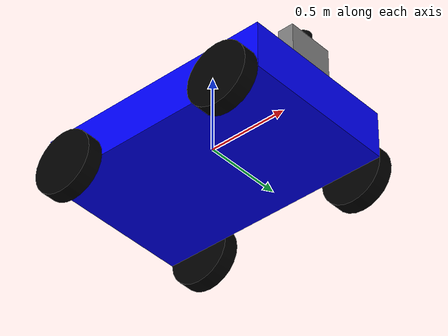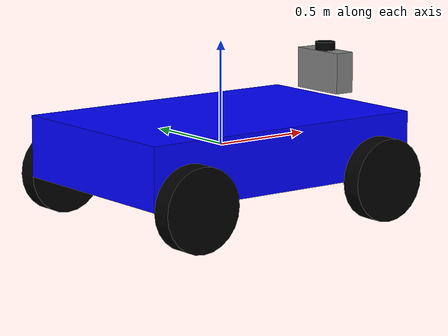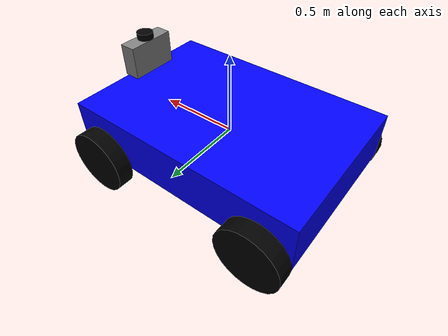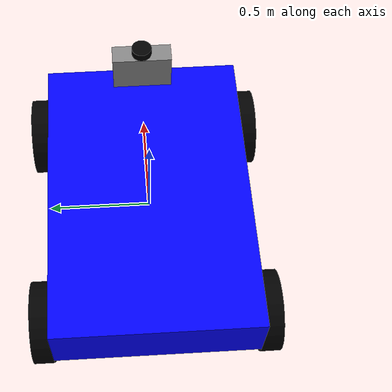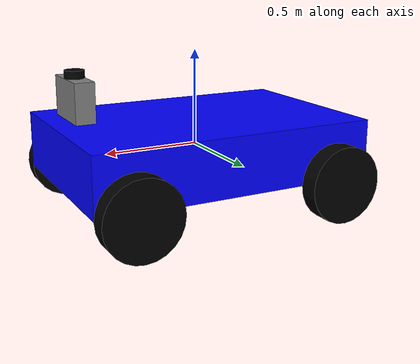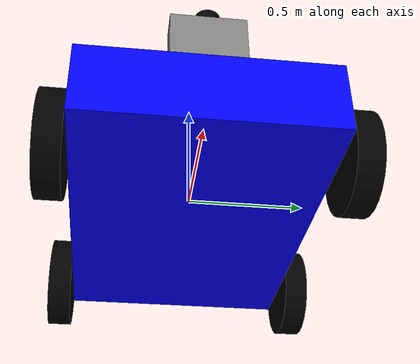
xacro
<?xml version="1.0"?>
<robot xmlns:xacro="http://www.ros.org/wiki/xacro" name="my_robot">

    <xacro:include filename="ros2_control.xacro" />
    <xacro:include filename="lidar.xacro" />

    <!-- BASE LINK (free floating) -->
    <link name="base_link"></link>

    <!-- BODY LINK (chassis) -->
    <joint name="base_to_body" type="fixed">
        <parent link="base_link"/>
        <child link="body_link"/>
        <origin xyz="0 0 0" rpy="0 0 0"/>
    </joint>

    <!-- BASE_FOOTPRINT LINK -->

    <joint name="base_footprint_joint" type="fixed">
        <parent link="base_link"/>
        <child link="base_footprint"/>
        <origin xyz="0 0 0" rpy="0 0 0"/>
    </joint>

    <link name="base_footprint">
    </link>

    <link name="body_link">
    <visual>
        <origin xyz="0.0 0.0 0.0" rpy="0.0 0.0 0.0"/>
        <geometry>
            <box size="1.5 1 0.3"/>
        </geometry>
        <material name="blue">
            <color rgba="0 0 1 1"/>
        </material>
    </visual>
    <collision>
        <origin xyz="0.0 0.0 0.0" rpy="0.0 0.0 0.0"/>
        <geometry>
            <box size="1.5 1 0.3"/>
        </geometry>
    </collision>
    <inertial>
        <origin xyz="0 0 0" rpy="0 0 0"/>
        <mass value="10.0"/>
        <inertia ixx="0.916" ixy="0.0" ixz="0.0" iyy="1.979" iyz="0.0" izz="2.708"/>
    </inertial>
    </link>

    <gazebo reference="body_link">
        <material>Gazebo/Blue</material>
    </gazebo>

    <link name="left_front_wheel_link">
    <visual>
        <origin xyz="0.0 0.0 0.0" rpy="1.57 0.0 0.0"/>
        <geometry>
            <cylinder radius="0.2" length="0.1"/>
        </geometry>
        <material name="black">
            <color rgba="0 0 0 1"/>
        </material>
    </visual>
    <collision>
        <origin xyz="0.0 0.0 0.0" rpy="1.57 0.0 0.0"/>
        <geometry>
            <cylinder radius="0.2" length="0.1"/>
        </geometry>
        <surface>
            <friction>
                <ode>
                    <mu>1.0</mu>
                    <mu2>1.0</mu2>
                </ode>
            </friction>
        </surface>
    </collision>
    <inertial>
        <origin xyz="0 0 0" rpy="0 0 0"/>
        <mass value="0.5"/>
        <inertia ixx="0.00625" ixy="0.0" ixz="0.0" iyy="0.00625" iyz="0.0" izz="0.01"/>
    </inertial>
    </link>

    <gazebo reference="left_front_wheel_link">
        <material>Gazebo/Black</material>
        <mu1>1.0</mu1>
        <mu2>1.0</mu2>
    </gazebo>

    <joint name="body_to_left_front_wheel" type="continuous">
        <parent link="body_link"/>
        <child link="left_front_wheel_link"/>
        <origin xyz="0.55 -0.55 -0.15" rpy="0.0 0.0 0.0"/>
        <axis xyz="0 1 0"/>
    </joint>

    <link name="left_back_wheel_link">
    <visual>
        <origin xyz="0.0 0.0 0.0" rpy="1.57 0.0 0.0"/>
        <geometry>
            <cylinder radius="0.2" length="0.1"/>
        </geometry>
        <material name="black">
            <color rgba="0 0 0 1"/>
        </material>
    </visual>
    <collision>
        <origin xyz="0.0 0.0 0.0" rpy="1.57 0.0 0.0"/>
        <geometry>
            <cylinder radius="0.2" length="0.1"/>
        </geometry>
        <surface>
            <friction>
                <ode>
                    <mu>1.0</mu>
                    <mu2>1.0</mu2>
                </ode>
            </friction>
        </surface>
    </collision>
    <inertial>
        <origin xyz="0 0 0" rpy="0 0 0"/>
        <mass value="0.5"/>
        <inertia ixx="0.00625" ixy="0.0" ixz="0.0" iyy="0.00625" iyz="0.0" izz="0.01"/>
    </inertial>
    </link>

    <gazebo reference="left_back_wheel_link">
        <material>Gazebo/Black</material>
        <mu1>1.0</mu1>
        <mu2>1.0</mu2>
    </gazebo>

    <joint name="body_to_left_back_wheel" type="continuous">
        <parent link="body_link"/>
        <child link="left_back_wheel_link"/>
        <origin xyz="-0.55 -0.55 -0.15" rpy="0.0 0.0 0.0"/>
        <axis xyz="0 1 0"/>
    </joint>

    <link name="right_front_wheel_link">
    <visual>
        <origin xyz="0.0 0.0 0.0" rpy="1.57 0.0 0.0"/>
        <geometry>
            <cylinder radius="0.2" length="0.1"/>
        </geometry>
        <material name="black">
            <color rgba="0 0 0 1"/>
        </material>
    </visual>
    <collision>
        <origin xyz="0.0 0.0 0.0" rpy="1.57 0.0 0.0"/>
        <geometry>
            <cylinder radius="0.2" length="0.1"/>
        </geometry>
        <surface>
            <friction>
                <ode>
                    <mu>1.0</mu>
                    <mu2>1.0</mu2>
                </ode>
            </friction>
        </surface>
    </collision>
    <inertial>
        <origin xyz="0 0 0" rpy="0 0 0"/>
        <mass value="0.5"/>
        <inertia ixx="0.00625" ixy="0.0" ixz="0.0" iyy="0.00625" iyz="0.0" izz="0.01"/>
    </inertial>
    </link>

    <gazebo reference="right_front_wheel_link">
        <material>Gazebo/Black</material>
        <mu1>1.0</mu1>
        <mu2>1.0</mu2>
    </gazebo>

    <joint name="body_to_right_front_wheel" type="continuous">
        <parent link="body_link"/>
        <child link="right_front_wheel_link"/>
        <origin xyz="0.55 0.55 -0.15" rpy="0.0 0.0 0.0"/>
        <axis xyz="0 1 0"/>
    </joint>

    <link name="right_back_wheel_link">
    <visual>
        <origin xyz="0.0 0.0 0.0" rpy="1.57 0.0 0.0"/>
        <geometry>
            <cylinder radius="0.2" length="0.1"/>
        </geometry>
        <material name="black">
            <color rgba="0 0 0 1"/>
        </material>
    </visual>
    <collision>
        <origin xyz="0.0 0.0 0.0" rpy="1.57 0.0 0.0"/>
        <geometry>
            <cylinder radius="0.2" length="0.1"/>
        </geometry>
        <surface>
            <friction>
                <ode>
                    <mu>1.0</mu>
                    <mu2>1.0</mu2>
                </ode>
            </friction>
        </surface>
    </collision>
    <inertial>
        <origin xyz="0 0 0" rpy="0 0 0"/>
        <mass value="0.5"/>
        <inertia ixx="0.00625" ixy="0.0" ixz="0.0" iyy="0.00625" iyz="0.0" izz="0.01"/>
    </inertial>
    </link>

    <gazebo reference="right_back_wheel_link">
        <material>Gazebo/Black</material>
        <mu1>1.0</mu1>
        <mu2>1.0</mu2>
    </gazebo>

    <joint name="body_to_right_back_wheel" type="continuous">
        <parent link="body_link"/>
        <child link="right_back_wheel_link"/>
        <origin xyz="-0.55 0.55 -0.15" rpy="0.0 0.0 0.0"/>
        <axis xyz="0 1 0"/>
    </joint>

    <link name="camera_link">
    <visual>
        <geometry>
            <box size="0.1 0.3 0.2"/>
        </geometry>
        <material name="gray">
            <color rgba="0.5 0.5 0.5 1"/>
        </material>
    </visual>
    <collision>
        <geometry>
            <box size="0.1 0.3 0.2"/>
        </geometry>
    </collision>
    <inertial>
        <origin xyz="0 0 0" rpy="0 0 0"/>
        <mass value="0.1"/>
        <inertia ixx="0.001" ixy="0.0" ixz="0.0" iyy="0.001" iyz="0.0" izz="0.001"/>
    </inertial>
    </link>

    <gazebo reference="camera_link">
        <material>Gazebo/Grey</material>
    </gazebo>

    <joint name="body_to_camera" type="fixed">
        <parent link="body_link"/>
        <child link="camera_link"/>
        <origin xyz="0.65 0 0.3" rpy="0 0 0"/>
    </joint>

        <joint name="camera_optical_joint" type="fixed">
        <origin xyz="0 0 0" rpy="-1.571 0 -1.571" />
        <parent link="camera_link" />
        <child link="camera_link_optical" />
    </joint>

    <link name="camera_link_optical"></link>

    <gazebo reference="camera_link">
        <sensor type="camera" name="my_camera">
            <update_rate>20</update_rate>
            <visualize>true</visualize>
            <camera name="cam">
                <horizontal_fov>1.3962634</horizontal_fov>
                <image>
                    <width>640</width>
                    <height>480</height>
                    <format>R8B8G8</format>
                </image>
                <clip>
                    <near>0.02</near>
                    <far>300</far>
                </clip>
                <noise>
                    <type>gaussian</type>
                    <mean>0.0</mean>
                    <stddev>0.007</stddev>
                </noise>
            </camera>
            <plugin name="camera_controller" filename="libgazebo_ros_camera.so">
                <frame_name>camera_link_optical</frame_name>
                <min_depth>0.1</min_depth>
                <max_depth>500</max_depth>
            </plugin>
        </sensor>
    </gazebo>

</robot>

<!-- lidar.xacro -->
<robot xmlns:xacro="http://www.ros.org/wiki/xacro" >

    <joint name="laser_joint" type="fixed">
        <parent link="camera_link"/>
        <child link="laser_frame"/>
        <origin xyz="0 0 0.12" rpy="0 0 0"/>
    </joint>

    <link name="laser_frame">
        <visual>
            <geometry>
                <cylinder radius="0.05" length="0.04"/>
            </geometry>
            <material name="black"/>
        </visual>
        <visual>
            <origin xyz="0 0 -0.05"/>
            <geometry>
                <cylinder radius="0.01" length="0.1"/>
            </geometry>
            <material name="black"/>
        </visual>
        <collision>
            <geometry>
                <cylinder radius="0.05" length="0.04"/>
            </geometry>
        </collision>
        <inertial>
            <origin xyz="0 0 0" rpy="0 0 0"/>
            <mass value="0.1"/>
            <inertia ixx="0.0001" ixy="0.0" ixz="0.0" iyy="0.0001" iyz="0.0" izz="0.000125"/>
        </inertial>
    </link>

    <gazebo reference="laser_frame">
        <material>Gazebo/Black</material>

        <sensor name="laser" type="ray">
            <pose> 0 0 0 0 0 0 </pose>
            <visualize>false</visualize>
            <update_rate>10</update_rate>
            <ray>
                <scan>
                    <horizontal>
                        <samples>360</samples>
                        <min_angle>-3.14</min_angle>
                        <max_angle>3.14</max_angle>
                    </horizontal>
                </scan>
                <range>
                    <min>0.3</min>
                    <max>12</max>
                </range>
            </ray>
            <plugin name="laser_controller" filename="libgazebo_ros_ray_sensor.so">
                <ros>
                    <argument>~/out:=scan</argument>
                </ros>
                <output_type>sensor_msgs/LaserScan</output_type>
                <frame_name>laser_frame</frame_name>
            </plugin>
        </sensor>
    </gazebo>

</robot>
